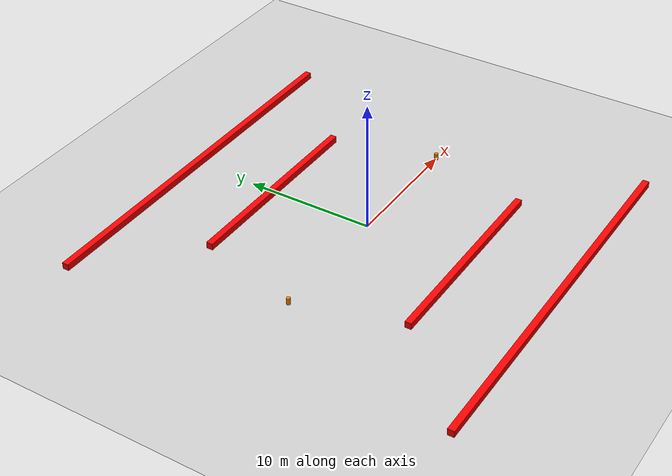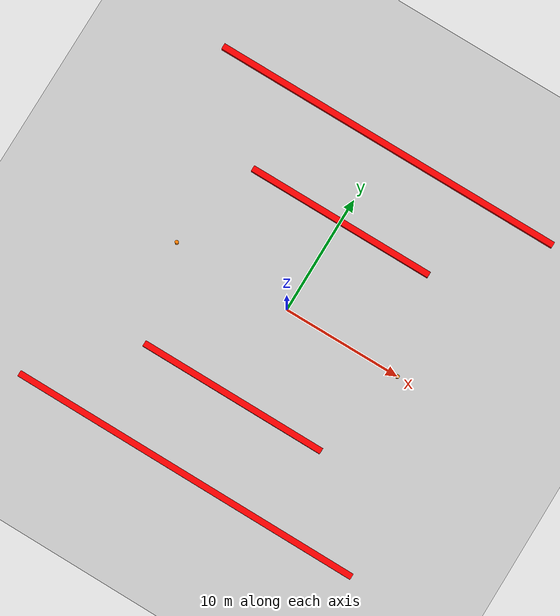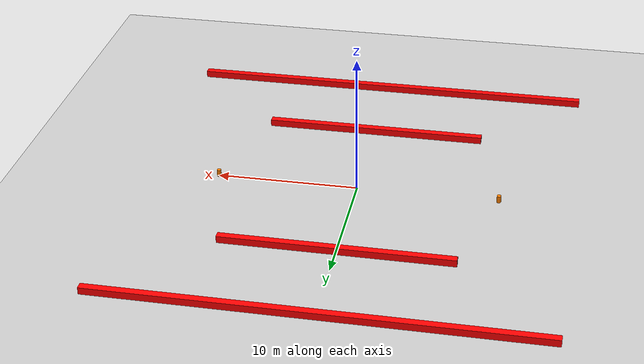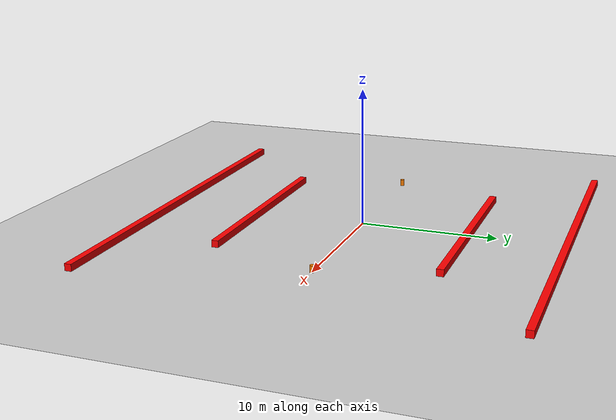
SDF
<?xml version="1.0" ?>
<sdf version="1.6">
  <world name="race_track">
    <include>
      <uri>model://sun</uri>
    </include>
    <include>
      <uri>model://ground_plane</uri>
    </include>

    <!-- Outer track barriers -->
    <model name="outer_barrier_1">
      <static>true</static>
      <pose>0 15 0.25 0 0 0</pose>
      <link name="link">
        <collision name="collision">
          <geometry>
            <box>
              <size>30 0.5 0.5</size>
            </box>
          </geometry>
        </collision>
        <visual name="visual">
          <geometry>
            <box>
              <size>30 0.5 0.5</size>
            </box>
          </geometry>
          <material>
            <ambient>1 0 0 1</ambient>
          </material>
        </visual>
      </link>
    </model>

    <model name="outer_barrier_2">
      <static>true</static>
      <pose>0 -15 0.25 0 0 0</pose>
      <link name="link">
        <collision name="collision">
          <geometry>
            <box>
              <size>30 0.5 0.5</size>
            </box>
          </geometry>
        </collision>
        <visual name="visual">
          <geometry>
            <box>
              <size>30 0.5 0.5</size>
            </box>
          </geometry>
          <material>
            <ambient>1 0 0 1</ambient>
          </material>
        </visual>
      </link>
    </model>

    <!-- Inner track barriers -->
    <model name="inner_barrier_1">
      <static>true</static>
      <pose>0 8 0.25 0 0 0</pose>
      <link name="link">
        <collision name="collision">
          <geometry>
            <box>
              <size>16 0.5 0.5</size>
            </box>
          </geometry>
        </collision>
        <visual name="visual">
          <geometry>
            <box>
              <size>16 0.5 0.5</size>
            </box>
          </geometry>
          <material>
            <ambient>1 0 0 1</ambient>
          </material>
        </visual>
      </link>
    </model>

    <model name="inner_barrier_2">
      <static>true</static>
      <pose>0 -8 0.25 0 0 0</pose>
      <link name="link">
        <collision name="collision">
          <geometry>
            <box>
              <size>16 0.5 0.5</size>
            </box>
          </geometry>
        </collision>
        <visual name="visual">
          <geometry>
            <box>
              <size>16 0.5 0.5</size>
            </box>
          </geometry>
          <material>
            <ambient>1 0 0 1</ambient>
          </material>
        </visual>
      </link>
    </model>

    <!-- Racing cones -->
    <model name="cone1">
      <static>true</static>
      <pose>-10 0 0.25 0 0 0</pose>
      <link name="link">
        <collision name="collision">
          <geometry>
            <cylinder>
              <radius>0.15</radius>
              <length>0.5</length>
            </cylinder>
          </geometry>
        </collision>
        <visual name="visual">
          <geometry>
            <cylinder>
              <radius>0.15</radius>
              <length>0.5</length>
            </cylinder>
          </geometry>
          <material>
            <ambient>1 0.5 0 1</ambient>
          </material>
        </visual>
      </link>
    </model>

    <model name="cone2">
      <static>true</static>
      <pose>10 0 0.25 0 0 0</pose>
      <link name="link">
        <collision name="collision">
          <geometry>
            <cylinder>
              <radius>0.15</radius>
              <length>0.5</length>
            </cylinder>
          </geometry>
        </collision>
        <visual name="visual">
          <geometry>
            <cylinder>
              <radius>0.15</radius>
              <length>0.5</length>
            </cylinder>
          </geometry>
          <material>
            <ambient>1 0.5 0 1</ambient>
          </material>
        </visual>
      </link>
    </model>

  </world>
</sdf>
